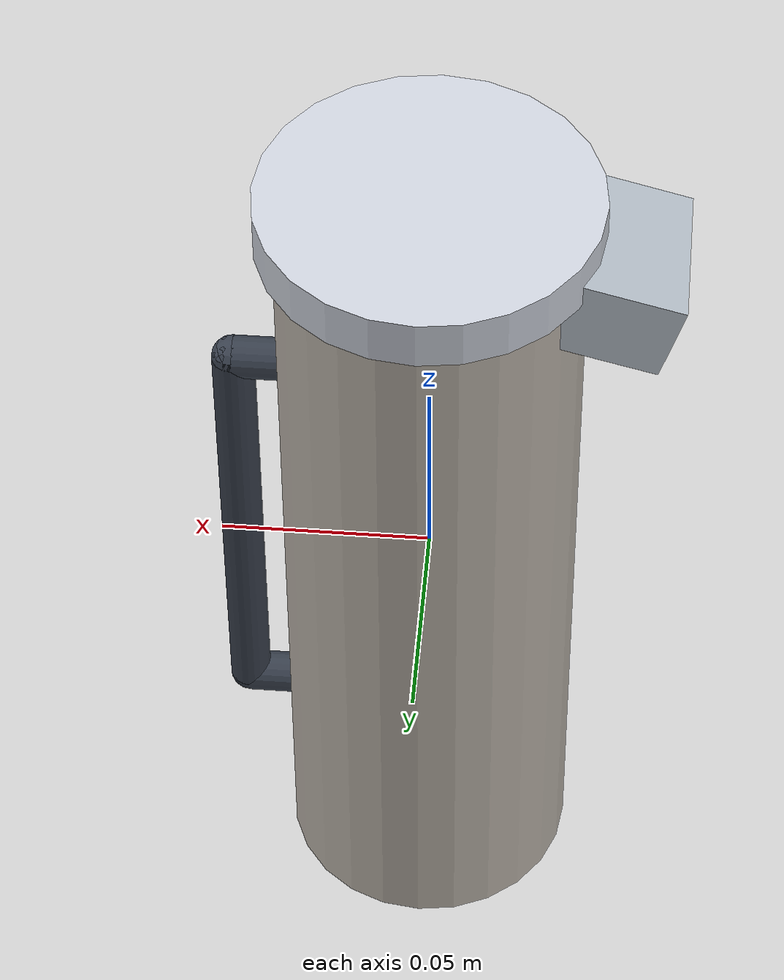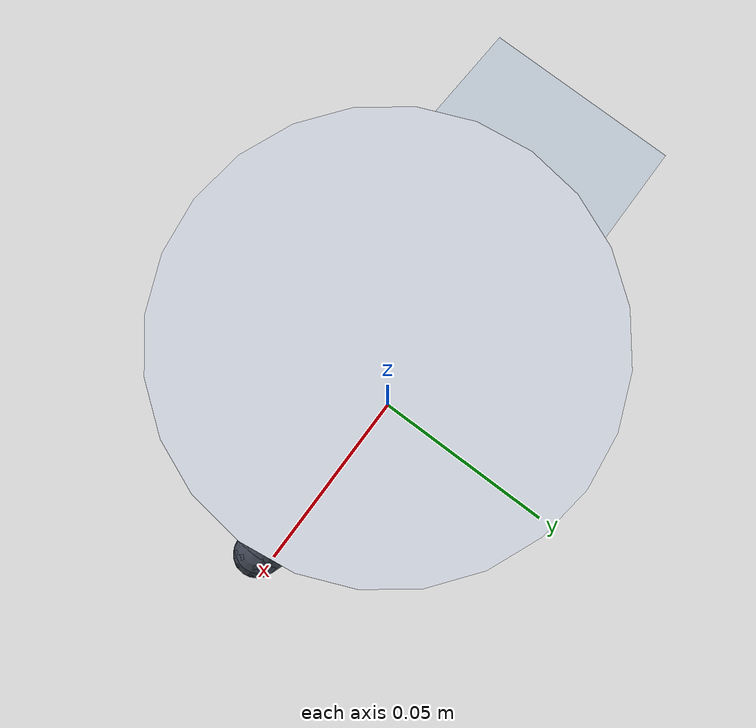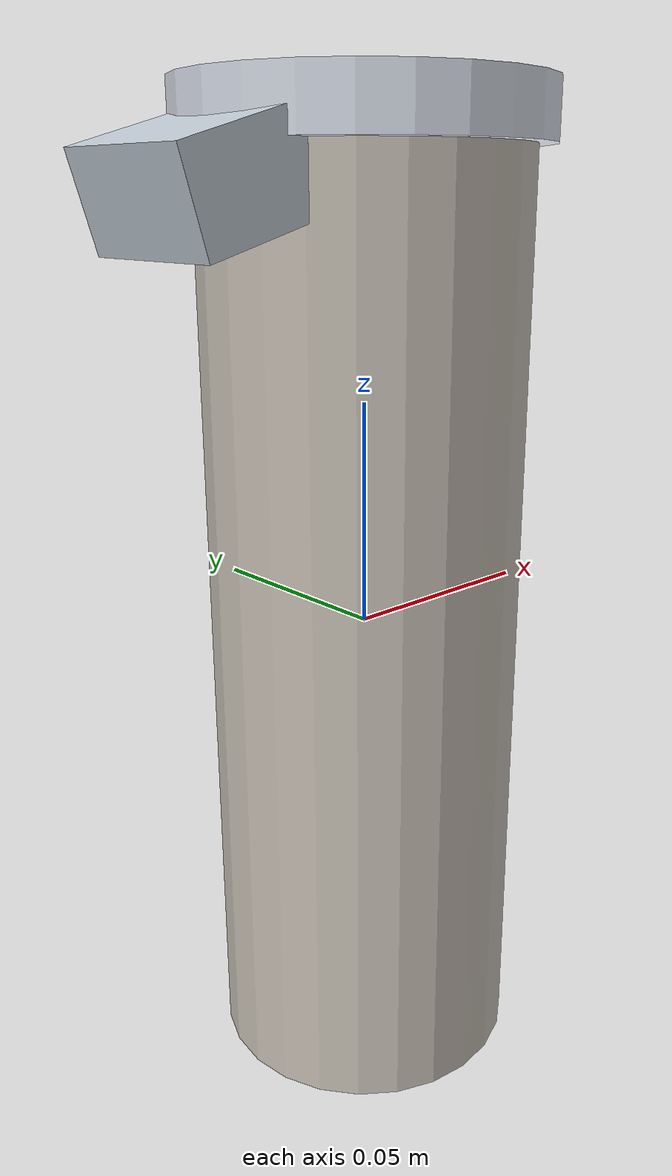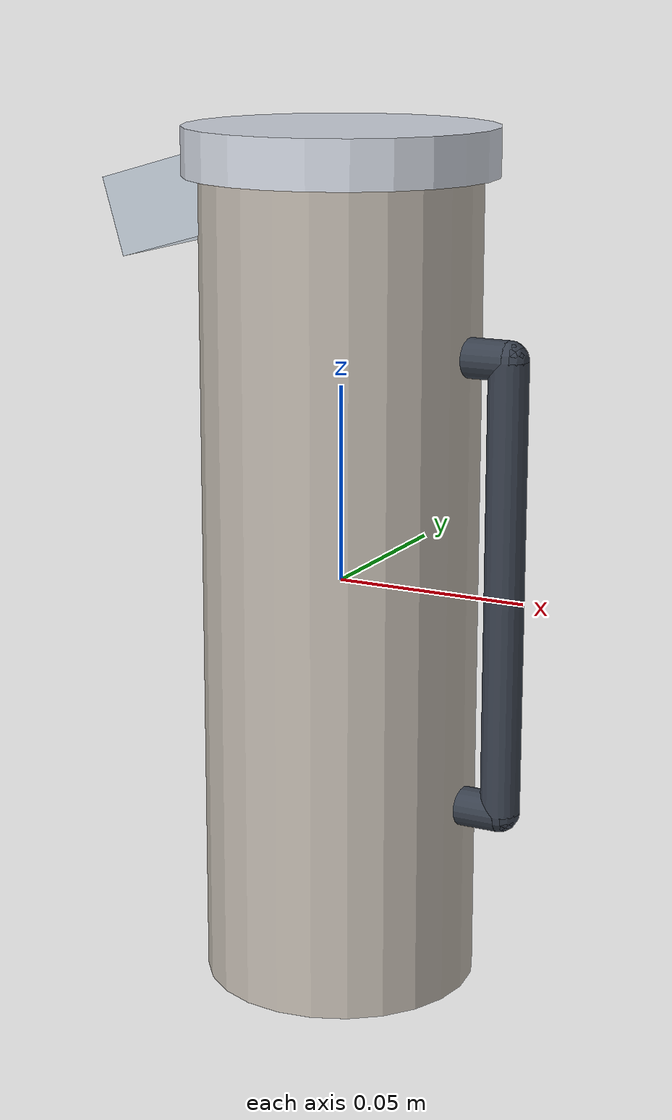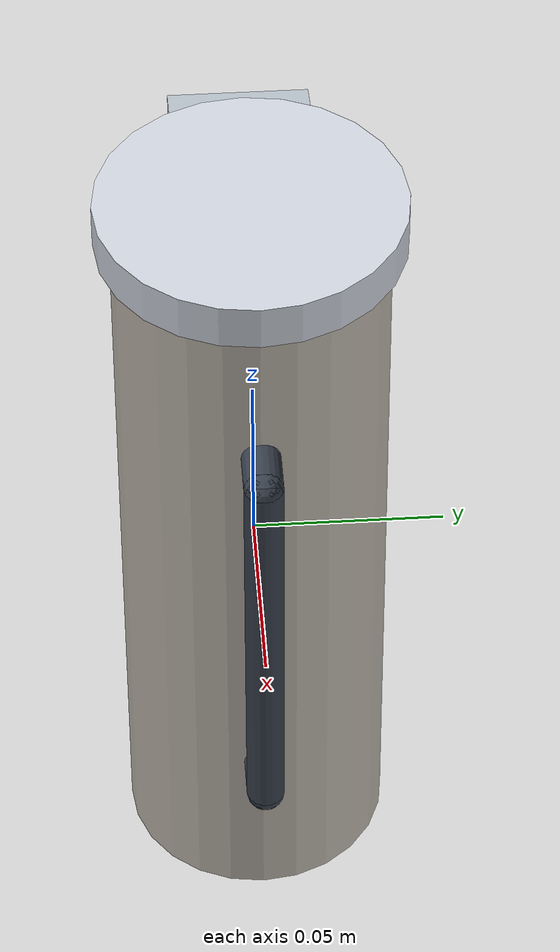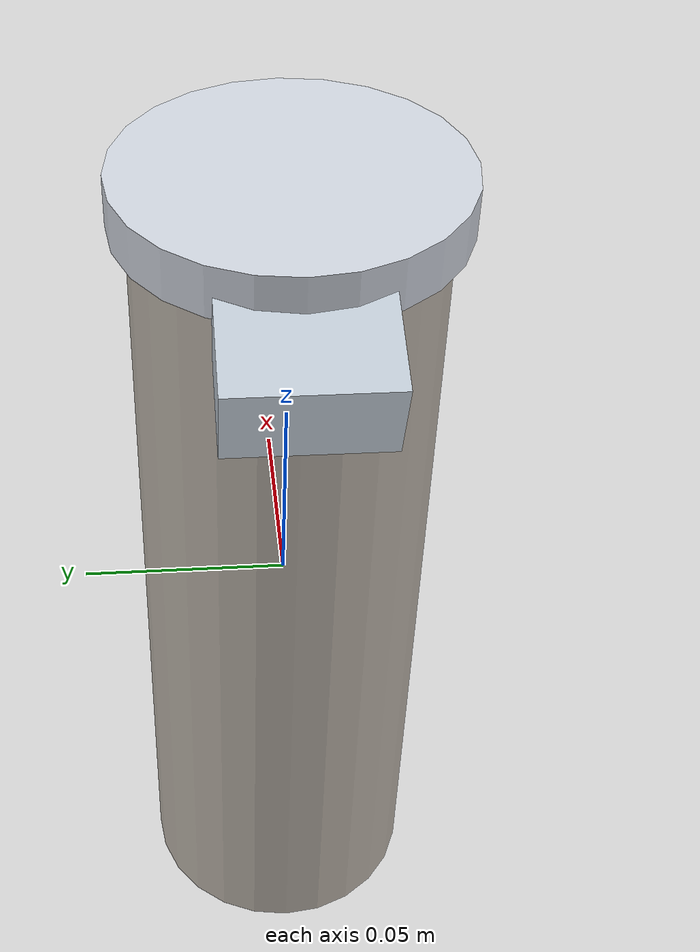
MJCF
<?xml version='1.0' encoding='utf8'?>
<mujoco model="vla82_vla82_040">
  <compiler angle="radian" />
  <asset>
    <texture name="source_texture" type="2d" file="source_texture.png" />
    <material name="source_material" texture="source_texture" rgba="1 1 1 1" />
  </asset>
  <default>
    <default class="visual"><geom contype="0" conaffinity="0" group="1" /></default>
    <default class="collision"><geom contype="1" conaffinity="1" group="0" density="300" friction="0.4 0.004 0.0001" solref="0.02 1" solimp="0.9 0.95 0.001" /></default>
    <default class="region"><geom contype="0" conaffinity="0" group="1" rgba="0 1 0 0" mass="0" /></default>
  </default>
  <worldbody><body><body name="object">
    <geom name="body_visual" class="visual" type="cylinder" size="0.035 0.105" material="source_material" />
    <geom name="rim_visual" class="visual" type="cylinder" pos="0 0 0.108" size="0.039 0.006" rgba="0.82 0.84 0.88 1" />
    <geom name="spout_visual" class="visual" type="box" pos="-0.040 0 0.095" size="0.015 0.018 0.010" euler="0 -0.28 0" rgba="0.76 0.80 0.84 1" />
    <geom name="handle_outer_visual" class="visual" type="capsule" fromto="0.033 0 -0.055 0.045 0 -0.055" size="0.005" rgba="0.22 0.25 0.30 1" />
    <geom name="handle_upper_visual" class="visual" type="capsule" fromto="0.045 0 -0.055 0.045 0 0.060" size="0.005" rgba="0.22 0.25 0.30 1" />
    <geom name="handle_lower_visual" class="visual" type="capsule" fromto="0.033 0 0.060 0.045 0 0.060" size="0.005" rgba="0.22 0.25 0.30 1" />
    <geom name="body_collision" class="collision" type="cylinder" size="0.035 0.105" />
    <geom name="reg_bbox" class="region" type="box" pos="0 0 0" size="0.050000 0.050000 0.115000" />
  </body></body></worldbody>
  <actuator />
</mujoco>
